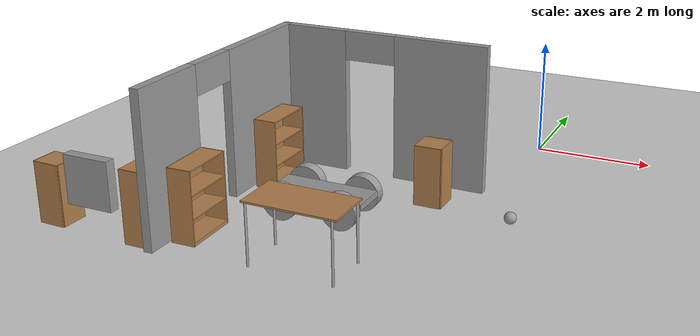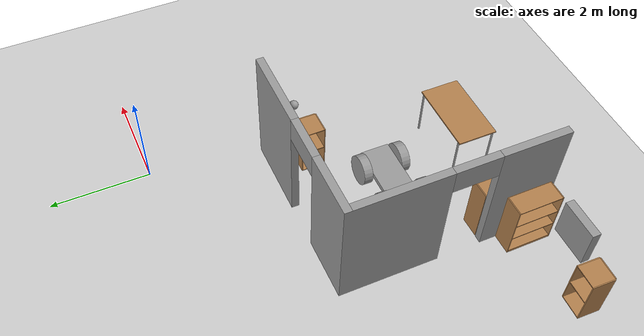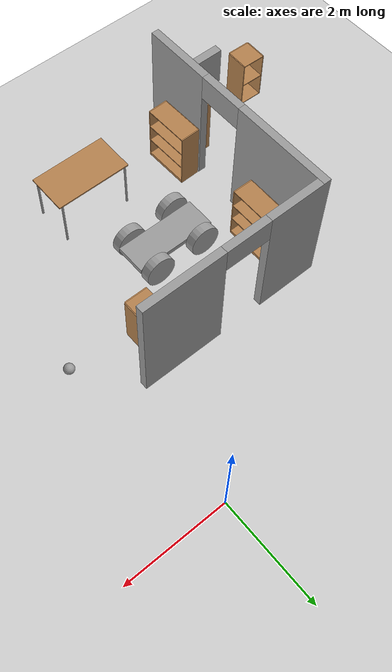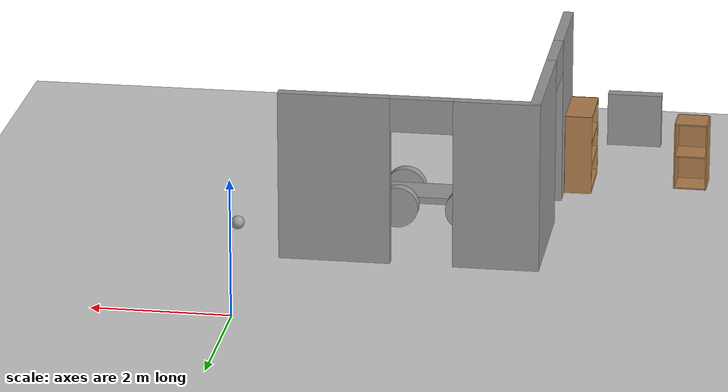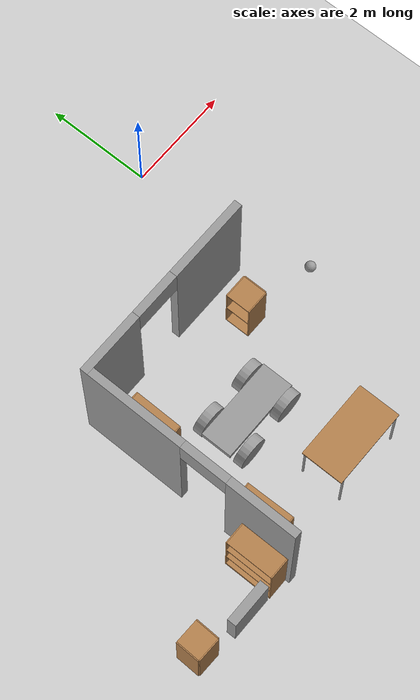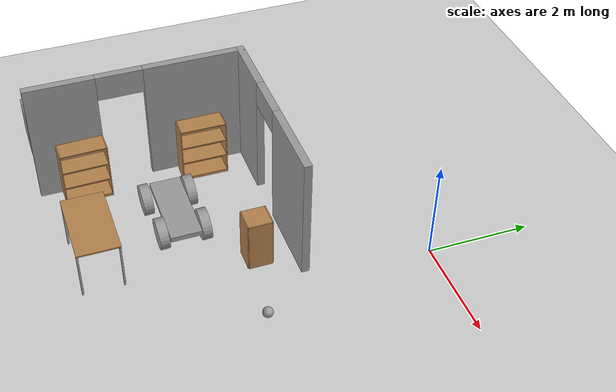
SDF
<sdf version="1.6">
 <world name="default">
  <model name="ground_plane">
   <static>1</static>
   <link name="link">
    <collision name="collision">
     <geometry><plane><normal>0 0 1</normal><size>100 100</size></plane></geometry>
     <surface><friction><ode><mu>100</mu><mu2>50</mu2></ode></friction></surface>
    </collision>
    <visual name="visual">
     <cast_shadows>0</cast_shadows>
     <geometry><plane><normal>0 0 1</normal><size>100 100</size></plane></geometry>
     <material>
      <script><uri>file://media/materials/scripts/gazebo.material</uri><name>Gazebo/Grey</name></script>
     </material>
    </visual>
   </link>
  </model>
  <model name="Building">
   <link name="Wall_10">
    <pose>4.03944 -1.77537 0 0 -0 0</pose>
    <visual name="Wall_10_Visual_0">
     <pose>-1.25521 0 1.25 0 -0 0</pose>
     <geometry><box><size>1.23958 0.15 2.5</size></box></geometry>
     <material>
      <script><uri>file://media/materials/scripts/gazebo.material</uri><name>Gazebo/Grey</name></script>
      <ambient>1 1 1 1</ambient>
      <shader type="pixel"/>
      <diffuse>0.7 0.7 0.7 1</diffuse>
      <specular>0.01 0.01 0.01 1</specular>
      <emissive>0 0 0 1</emissive>
     </material>
     <meta><layer>0</layer></meta>
    </visual>
    <visual name="Wall_10_Visual_1">
     <pose>1.06979 0 1.25 0 -0 0</pose>
     <geometry><box><size>1.61042 0.15 2.5</size></box></geometry>
     <material>
      <script><uri>file://media/materials/scripts/gazebo.material</uri><name>Gazebo/Grey</name></script>
      <ambient>1 1 1 1</ambient>
      <shader type="pixel"/>
      <diffuse>0.7 0.7 0.7 1</diffuse>
      <specular>0.01 0.01 0.01 1</specular>
      <emissive>0 0 0 1</emissive>
     </material>
     <meta><layer>0</layer></meta>
    </visual>
    <visual name="Wall_10_Visual_2">
     <pose>-0.185424 0 2.25 0 -0 0</pose>
     <geometry><box><size>0.9 0.15 0.5</size></box></geometry>
     <material>
      <script><uri>file://media/materials/scripts/gazebo.material</uri><name>Gazebo/Grey</name></script>
      <ambient>1 1 1 1</ambient>
      <shader type="pixel"/>
      <diffuse>0.7 0.7 0.7 1</diffuse>
      <specular>0.01 0.01 0.01 1</specular>
      <emissive>0 0 0 1</emissive>
     </material>
     <meta><layer>0</layer></meta>
    </visual>
    <collision name="Wall_10_Collision_0">
     <pose>-1.25521 0 1.25 0 -0 0</pose>
     <geometry><box><size>1.23958 0.15 2.5</size></box></geometry>
     <surface>
      <friction>
       <ode><mu>1</mu><mu2>1</mu2><fdir1>0 0 0</fdir1><slip1>0</slip1><slip2>0</slip2></ode>
       <torsional>
        <coefficient>1</coefficient>
        <patch_radius>0</patch_radius>
        <surface_radius>0</surface_radius>
        <use_patch_radius>1</use_patch_radius>
        <ode><slip>0</slip></ode>
       </torsional>
      </friction>
      <bounce><restitution_coefficient>0</restitution_coefficient><threshold>1e+06</threshold></bounce>
      <contact>
       <collide_without_contact>0</collide_without_contact>
       <collide_without_contact_bitmask>1</collide_without_contact_bitmask>
       <collide_bitmask>1</collide_bitmask>
       <ode>
        <soft_cfm>0</soft_cfm>
        <soft_erp>0.2</soft_erp>
        <kp>1e+13</kp>
        <kd>1</kd>
        <max_vel>0.01</max_vel>
        <min_depth>0</min_depth>
       </ode>
       <bullet>
        <split_impulse>1</split_impulse>
        <split_impulse_penetration_threshold>-0.01</split_impulse_penetration_threshold>
        <soft_cfm>0</soft_cfm>
        <soft_erp>0.2</soft_erp>
        <kp>1e+13</kp>
        <kd>1</kd>
       </bullet>
      </contact>
     </surface>
    </collision>
    <collision name="Wall_10_Collision_1">
     <pose>1.06979 0 1.25 0 -0 0</pose>
     <geometry><box><size>1.61042 0.15 2.5</size></box></geometry>
     <surface>
      <friction>
       <ode><mu>1</mu><mu2>1</mu2><fdir1>0 0 0</fdir1><slip1>0</slip1><slip2>0</slip2></ode>
       <torsional>
        <coefficient>1</coefficient>
        <patch_radius>0</patch_radius>
        <surface_radius>0</surface_radius>
        <use_patch_radius>1</use_patch_radius>
        <ode><slip>0</slip></ode>
       </torsional>
      </friction>
      <bounce><restitution_coefficient>0</restitution_coefficient><threshold>1e+06</threshold></bounce>
      <contact>
       <collide_without_contact>0</collide_without_contact>
       <collide_without_contact_bitmask>1</collide_without_contact_bitmask>
       <collide_bitmask>1</collide_bitmask>
       <ode>
        <soft_cfm>0</soft_cfm>
        <soft_erp>0.2</soft_erp>
        <kp>1e+13</kp>
        <kd>1</kd>
        <max_vel>0.01</max_vel>
        <min_depth>0</min_depth>
       </ode>
       <bullet>
        <split_impulse>1</split_impulse>
        <split_impulse_penetration_threshold>-0.01</split_impulse_penetration_threshold>
        <soft_cfm>0</soft_cfm>
        <soft_erp>0.2</soft_erp>
        <kp>1e+13</kp>
        <kd>1</kd>
       </bullet>
      </contact>
     </surface>
    </collision>
    <collision name="Wall_10_Collision_2">
     <pose>-0.185424 0 2.25 0 -0 0</pose>
     <geometry><box><size>0.9 0.15 0.5</size></box></geometry>
     <surface>
      <friction>
       <ode><mu>1</mu><mu2>1</mu2><fdir1>0 0 0</fdir1><slip1>0</slip1><slip2>0</slip2></ode>
       <torsional>
        <coefficient>1</coefficient>
        <patch_radius>0</patch_radius>
        <surface_radius>0</surface_radius>
        <use_patch_radius>1</use_patch_radius>
        <ode><slip>0</slip></ode>
       </torsional>
      </friction>
      <bounce><restitution_coefficient>0</restitution_coefficient><threshold>1e+06</threshold></bounce>
      <contact>
       <collide_without_contact>0</collide_without_contact>
       <collide_without_contact_bitmask>1</collide_without_contact_bitmask>
       <collide_bitmask>1</collide_bitmask>
       <ode>
        <soft_cfm>0</soft_cfm>
        <soft_erp>0.2</soft_erp>
        <kp>1e+13</kp>
        <kd>1</kd>
        <max_vel>0.01</max_vel>
        <min_depth>0</min_depth>
       </ode>
       <bullet>
        <split_impulse>1</split_impulse>
        <split_impulse_penetration_threshold>-0.01</split_impulse_penetration_threshold>
        <soft_cfm>0</soft_cfm>
        <soft_erp>0.2</soft_erp>
        <kp>1e+13</kp>
        <kd>1</kd>
       </bullet>
      </contact>
     </surface>
    </collision>
   </link>
   <link name="Wall_9">
    <pose>2.23944 -3.82538 0 0 -0 1.5708</pose>
    <visual name="Wall_9_Visual_0">
     <pose>-1.45094 0 1.25 0 -0 0</pose>
     <geometry><box><size>1.34813 0.15 2.5</size></box></geometry>
     <material>
      <script><uri>file://media/materials/scripts/gazebo.material</uri><name>Gazebo/Grey</name></script>
      <ambient>1 1 1 1</ambient>
      <shader type="pixel"/>
      <diffuse>0.7 0.7 0.7 1</diffuse>
      <specular>0.01 0.01 0.01 1</specular>
      <emissive>0 0 0 1</emissive>
     </material>
     <meta><layer>0</layer></meta>
    </visual>
    <visual name="Wall_9_Visual_1">
     <pose>1.12406 0 1.25 0 -0 0</pose>
     <geometry><box><size>2.00187 0.15 2.5</size></box></geometry>
     <material>
      <script><uri>file://media/materials/scripts/gazebo.material</uri><name>Gazebo/Grey</name></script>
      <ambient>1 1 1 1</ambient>
      <shader type="pixel"/>
      <diffuse>0.7 0.7 0.7 1</diffuse>
      <specular>0.01 0.01 0.01 1</specular>
      <emissive>0 0 0 1</emissive>
     </material>
     <meta><layer>0</layer></meta>
    </visual>
    <visual name="Wall_9_Visual_2">
     <pose>-0.326874 0 2.25 0 -0 0</pose>
     <geometry><box><size>0.9 0.15 0.5</size></box></geometry>
     <material>
      <script><uri>file://media/materials/scripts/gazebo.material</uri><name>Gazebo/Grey</name></script>
      <ambient>1 1 1 1</ambient>
      <shader type="pixel"/>
      <diffuse>0.7 0.7 0.7 1</diffuse>
      <specular>0.01 0.01 0.01 1</specular>
      <emissive>0 0 0 1</emissive>
     </material>
     <meta><layer>0</layer></meta>
    </visual>
    <collision name="Wall_9_Collision_0">
     <pose>-1.45094 0 1.25 0 -0 0</pose>
     <geometry><box><size>1.34813 0.15 2.5</size></box></geometry>
     <surface>
      <friction>
       <ode><mu>1</mu><mu2>1</mu2><fdir1>0 0 0</fdir1><slip1>0</slip1><slip2>0</slip2></ode>
       <torsional>
        <coefficient>1</coefficient>
        <patch_radius>0</patch_radius>
        <surface_radius>0</surface_radius>
        <use_patch_radius>1</use_patch_radius>
        <ode><slip>0</slip></ode>
       </torsional>
      </friction>
      <bounce><restitution_coefficient>0</restitution_coefficient><threshold>1e+06</threshold></bounce>
      <contact>
       <collide_without_contact>0</collide_without_contact>
       <collide_without_contact_bitmask>1</collide_without_contact_bitmask>
       <collide_bitmask>1</collide_bitmask>
       <ode>
        <soft_cfm>0</soft_cfm>
        <soft_erp>0.2</soft_erp>
        <kp>1e+13</kp>
        <kd>1</kd>
        <max_vel>0.01</max_vel>
        <min_depth>0</min_depth>
       </ode>
       <bullet>
        <split_impulse>1</split_impulse>
        <split_impulse_penetration_threshold>-0.01</split_impulse_penetration_threshold>
        <soft_cfm>0</soft_cfm>
        <soft_erp>0.2</soft_erp>
        <kp>1e+13</kp>
        <kd>1</kd>
       </bullet>
      </contact>
     </surface>
    </collision>
    <collision name="Wall_9_Collision_1">
     <pose>1.12406 0 1.25 0 -0 0</pose>
     <geometry><box><size>2.00187 0.15 2.5</size></box></geometry>
     <surface>
      <friction>
       <ode><mu>1</mu><mu2>1</mu2><fdir1>0 0 0</fdir1><slip1>0</slip1><slip2>0</slip2></ode>
       <torsional>
        <coefficient>1</coefficient>
        <patch_radius>0</patch_radius>
        <surface_radius>0</surface_radius>
        <use_patch_radius>1</use_patch_radius>
        <ode><slip>0</slip></ode>
       </torsional>
      </friction>
      <bounce><restitution_coefficient>0</restitution_coefficient><threshold>1e+06</threshold></bounce>
      <contact>
       <collide_without_contact>0</collide_without_contact>
       <collide_without_contact_bitmask>1</collide_without_contact_bitmask>
       <collide_bitmask>1</collide_bitmask>
       <ode>
        <soft_cfm>0</soft_cfm>
        <soft_erp>0.2</soft_erp>
        <kp>1e+13</kp>
        <kd>1</kd>
        <max_vel>0.01</max_vel>
        <min_depth>0</min_depth>
       </ode>
       <bullet>
        <split_impulse>1</split_impulse>
        <split_impulse_penetration_threshold>-0.01</split_impulse_penetration_threshold>
        <soft_cfm>0</soft_cfm>
        <soft_erp>0.2</soft_erp>
        <kp>1e+13</kp>
        <kd>1</kd>
       </bullet>
      </contact>
     </surface>
    </collision>
    <collision name="Wall_9_Collision_2">
     <pose>-0.326874 0 2.25 0 -0 0</pose>
     <geometry><box><size>0.9 0.15 0.5</size></box></geometry>
     <surface>
      <friction>
       <ode><mu>1</mu><mu2>1</mu2><fdir1>0 0 0</fdir1><slip1>0</slip1><slip2>0</slip2></ode>
       <torsional>
        <coefficient>1</coefficient>
        <patch_radius>0</patch_radius>
        <surface_radius>0</surface_radius>
        <use_patch_radius>1</use_patch_radius>
        <ode><slip>0</slip></ode>
       </torsional>
      </friction>
      <bounce><restitution_coefficient>0</restitution_coefficient><threshold>1e+06</threshold></bounce>
      <contact>
       <collide_without_contact>0</collide_without_contact>
       <collide_without_contact_bitmask>1</collide_without_contact_bitmask>
       <collide_bitmask>1</collide_bitmask>
       <ode>
        <soft_cfm>0</soft_cfm>
        <soft_erp>0.2</soft_erp>
        <kp>1e+13</kp>
        <kd>1</kd>
        <max_vel>0.01</max_vel>
        <min_depth>0</min_depth>
       </ode>
       <bullet>
        <split_impulse>1</split_impulse>
        <split_impulse_penetration_threshold>-0.01</split_impulse_penetration_threshold>
        <soft_cfm>0</soft_cfm>
        <soft_erp>0.2</soft_erp>
        <kp>1e+13</kp>
        <kd>1</kd>
       </bullet>
      </contact>
     </surface>
    </collision>
   </link>
   <link name="Window_9">
    <pose>1.21059 -5.84938 0.5 0 -0 0</pose>
    <visual name="Window_9_Visual">
     <pose>0 0 0.4 0 -0 0</pose>
     <geometry><box><size>0.8 0.17 0.8</size></box></geometry>
     <material>
      <script><uri>file://media/materials/scripts/gazebo.material</uri><name>Gazebo/Grey</name></script>
      <shader type="pixel"/>
      <ambient>0.3 0.3 0.3 1</ambient>
      <diffuse>0.7 0.7 0.7 1</diffuse>
      <specular>0.01 0.01 0.01 1</specular>
      <emissive>0 0 0 1</emissive>
     </material>
    </visual>
    <collision name="Window_9_Collision">
     <pose>0 0 0.4 0 -0 0</pose>
     <geometry><box><size>0.8 0.17 0.8</size></box></geometry>
     <surface>
      <friction>
       <ode><mu>1</mu><mu2>1</mu2><fdir1>0 0 0</fdir1><slip1>0</slip1><slip2>0</slip2></ode>
       <torsional>
        <coefficient>1</coefficient>
        <patch_radius>0</patch_radius>
        <surface_radius>0</surface_radius>
        <use_patch_radius>1</use_patch_radius>
        <ode><slip>0</slip></ode>
       </torsional>
      </friction>
      <bounce><restitution_coefficient>0</restitution_coefficient><threshold>1e+06</threshold></bounce>
      <contact>
       <collide_without_contact>0</collide_without_contact>
       <collide_without_contact_bitmask>1</collide_without_contact_bitmask>
       <collide_bitmask>1</collide_bitmask>
       <ode>
        <soft_cfm>0</soft_cfm>
        <soft_erp>0.2</soft_erp>
        <kp>1e+13</kp>
        <kd>1</kd>
        <max_vel>0.01</max_vel>
        <min_depth>0</min_depth>
       </ode>
       <bullet>
        <split_impulse>1</split_impulse>
        <split_impulse_penetration_threshold>-0.01</split_impulse_penetration_threshold>
        <soft_cfm>0</soft_cfm>
        <soft_erp>0.2</soft_erp>
        <kp>1e+13</kp>
        <kd>1</kd>
       </bullet>
      </contact>
     </surface>
    </collision>
   </link>
   <static>1</static>
   <pose>-6.1852 -0.576906 0 0 -0 0</pose>
  </model>
  <model name="cabinet_2">
   <static>1</static>
   <link name="cabinet_bottom_plate">
    <inertial>
     <pose>0 0 -1 0 -0 0</pose>
     <inertia><ixx>2.05</ixx><ixy>0</ixy><ixz>0</ixz><iyy>2.05</iyy><iyz>0</iyz><izz>2.05</izz></inertia>
     <mass>25</mass>
    </inertial>
    <collision name="cabinet_bottom_plate_geom">
     <pose>0 0 0.01 0 -0 0</pose>
     <geometry><box><size>0.45 0.45 0.02</size></box></geometry>
    </collision>
    <visual name="cabinet_bottom_plate_geom_visual">
     <pose>0 0 0.01 0 -0 0</pose>
     <geometry><box><size>0.45 0.45 0.02</size></box></geometry>
     <material>
      <script><uri>file://media/materials/scripts/gazebo.material</uri><name>Gazebo/Wood</name></script>
     </material>
    </visual>
    <collision name="cabinet_bottom_plate_geom_cabinet_back_plate">
     <pose>0.235 0 0.51 0 -0 0</pose>
     <geometry><box><size>0.02 0.45 1.02</size></box></geometry>
    </collision>
    <visual name="cabinet_bottom_plate_geom_cabinet_back_plate_visual">
     <pose>0.235 0 0.51 0 -0 0</pose>
     <geometry><box><size>0.02 0.45 1.02</size></box></geometry>
     <material>
      <script><uri>file://media/materials/scripts/gazebo.material</uri><name>Gazebo/Wood</name></script>
     </material>
    </visual>
    <collision name="cabinet_bottom_plate_geom_cabinet_left_plate">
     <pose>0 0.235 0.51 0 -0 0</pose>
     <geometry><box><size>0.45 0.02 1.02</size></box></geometry>
    </collision>
    <visual name="cabinet_bottom_plate_geom_cabinet_left_plate_visual">
     <pose>0 0.235 0.51 0 -0 0</pose>
     <geometry><box><size>0.45 0.02 1.02</size></box></geometry>
     <material>
      <script><uri>file://media/materials/scripts/gazebo.material</uri><name>Gazebo/Wood</name></script>
     </material>
    </visual>
    <collision name="cabinet_bottom_plate_geom_cabinet_middle_plate">
     <pose>0 0 0.51 0 -0 0</pose>
     <geometry><box><size>0.45 0.45 0.02</size></box></geometry>
    </collision>
    <visual name="cabinet_bottom_plate_geom_cabinet_middle_plate_visual">
     <pose>0 0 0.51 0 -0 0</pose>
     <geometry><box><size>0.45 0.45 0.02</size></box></geometry>
     <material>
      <script><uri>file://media/materials/scripts/gazebo.material</uri><name>Gazebo/Wood</name></script>
     </material>
    </visual>
    <collision name="cabinet_bottom_plate_geom_cabinet_right_plate">
     <pose>0 -0.235 0.51 0 -0 0</pose>
     <geometry><box><size>0.45 0.02 1.02</size></box></geometry>
    </collision>
    <visual name="cabinet_bottom_plate_geom_cabinet_right_plate_visual">
     <pose>0 -0.235 0.51 0 -0 0</pose>
     <geometry><box><size>0.45 0.02 1.02</size></box></geometry>
     <material>
      <script><uri>file://media/materials/scripts/gazebo.material</uri><name>Gazebo/Wood</name></script>
     </material>
    </visual>
    <collision name="cabinet_bottom_plate_geom_cabinet_top_plate">
     <pose>0 0 1.01 0 -0 0</pose>
     <geometry><box><size>0.45 0.45 0.02</size></box></geometry>
    </collision>
    <visual name="cabinet_bottom_plate_geom_cabinet_top_plate_visual">
     <pose>0 0 1.01 0 -0 0</pose>
     <geometry><box><size>0.45 0.45 0.02</size></box></geometry>
     <material>
      <script><uri>file://media/materials/scripts/gazebo.material</uri><name>Gazebo/Wood</name></script>
     </material>
    </visual>
   </link>
   <pose>-0.902573 -3.06685 0 0 -0 0</pose>
  </model>
  <model name="bookshelf_2">
   <static>1</static>
   <link name="link">
    <inertial><mass>1</mass></inertial>
    <collision name="back">
     <pose>0 0.005 0.6 0 -0 0</pose>
     <geometry><box><size>0.9 0.01 1.2</size></box></geometry>
    </collision>
    <visual name="visual1">
     <pose>0 0.005 0.6 0 -0 0</pose>
     <geometry><box><size>0.9 0.01 1.2</size></box></geometry>
     <material>
      <script><uri>file://media/materials/scripts/gazebo.material</uri><name>Gazebo/Wood</name></script>
     </material>
    </visual>
    <collision name="left_side">
     <pose>0.45 -0.195 0.6 0 -0 0</pose>
     <geometry><box><size>0.02 0.4 1.2</size></box></geometry>
    </collision>
    <visual name="visual2">
     <pose>0.45 -0.195 0.6 0 -0 0</pose>
     <geometry><box><size>0.02 0.4 1.2</size></box></geometry>
     <material>
      <script><uri>file://media/materials/scripts/gazebo.material</uri><name>Gazebo/Wood</name></script>
     </material>
    </visual>
    <collision name="right_side">
     <pose>-0.45 -0.195 0.6 0 -0 0</pose>
     <geometry><box><size>0.02 0.4 1.2</size></box></geometry>
    </collision>
    <visual name="visual3">
     <pose>-0.45 -0.195 0.6 0 -0 0</pose>
     <geometry><box><size>0.02 0.4 1.2</size></box></geometry>
     <material>
      <script><uri>file://media/materials/scripts/gazebo.material</uri><name>Gazebo/Wood</name></script>
     </material>
    </visual>
    <collision name="bottom">
     <pose>0 -0.195 0.03 0 -0 0</pose>
     <geometry><box><size>0.88 0.4 0.06</size></box></geometry>
    </collision>
    <visual name="visual4">
     <pose>0 -0.195 0.03 0 -0 0</pose>
     <geometry><box><size>0.88 0.4 0.06</size></box></geometry>
     <material>
      <script><uri>file://media/materials/scripts/gazebo.material</uri><name>Gazebo/Wood</name></script>
     </material>
    </visual>
    <collision name="top">
     <pose>0 -0.195 1.19 0 -0 0</pose>
     <geometry><box><size>0.88 0.4 0.02</size></box></geometry>
    </collision>
    <visual name="visual5">
     <pose>0 -0.195 1.19 0 -0 0</pose>
     <geometry><box><size>0.88 0.4 0.02</size></box></geometry>
     <material>
      <script><uri>file://media/materials/scripts/gazebo.material</uri><name>Gazebo/Wood</name></script>
     </material>
    </visual>
    <collision name="low_shelf">
     <pose>0 -0.195 0.43 0 -0 0</pose>
     <geometry><box><size>0.88 0.4 0.02</size></box></geometry>
    </collision>
    <visual name="visual6">
     <pose>0 -0.195 0.43 0 -0 0</pose>
     <geometry><box><size>0.88 0.4 0.02</size></box></geometry>
     <material>
      <script><uri>file://media/materials/scripts/gazebo.material</uri><name>Gazebo/Wood</name></script>
     </material>
    </visual>
    <collision name="high_shelf">
     <pose>0 -0.195 0.8 0 -0 0</pose>
     <geometry><box><size>0.88 0.4 0.02</size></box></geometry>
    </collision>
    <visual name="visual7">
     <pose>0 -0.195 0.8 0 -0 0</pose>
     <geometry><box><size>0.88 0.4 0.02</size></box></geometry>
     <material>
      <script><uri>file://media/materials/scripts/gazebo.material</uri><name>Gazebo/Wood</name></script>
     </material>
    </visual>
   </link>
   <pose>-3.79986 -3.30251 0 0 -0 1.56417</pose>
  </model>
  <model name="bookshelf_3">
   <static>1</static>
   <link name="link">
    <inertial><mass>1</mass></inertial>
    <collision name="back">
     <pose>0 0.005 0.6 0 -0 0</pose>
     <geometry><box><size>0.9 0.01 1.2</size></box></geometry>
    </collision>
    <visual name="visual1">
     <pose>0 0.005 0.6 0 -0 0</pose>
     <geometry><box><size>0.9 0.01 1.2</size></box></geometry>
     <material>
      <script><uri>file://media/materials/scripts/gazebo.material</uri><name>Gazebo/Wood</name></script>
     </material>
    </visual>
    <collision name="left_side">
     <pose>0.45 -0.195 0.6 0 -0 0</pose>
     <geometry><box><size>0.02 0.4 1.2</size></box></geometry>
    </collision>
    <visual name="visual2">
     <pose>0.45 -0.195 0.6 0 -0 0</pose>
     <geometry><box><size>0.02 0.4 1.2</size></box></geometry>
     <material>
      <script><uri>file://media/materials/scripts/gazebo.material</uri><name>Gazebo/Wood</name></script>
     </material>
    </visual>
    <collision name="right_side">
     <pose>-0.45 -0.195 0.6 0 -0 0</pose>
     <geometry><box><size>0.02 0.4 1.2</size></box></geometry>
    </collision>
    <visual name="visual3">
     <pose>-0.45 -0.195 0.6 0 -0 0</pose>
     <geometry><box><size>0.02 0.4 1.2</size></box></geometry>
     <material>
      <script><uri>file://media/materials/scripts/gazebo.material</uri><name>Gazebo/Wood</name></script>
     </material>
    </visual>
    <collision name="bottom">
     <pose>0 -0.195 0.03 0 -0 0</pose>
     <geometry><box><size>0.88 0.4 0.06</size></box></geometry>
    </collision>
    <visual name="visual4">
     <pose>0 -0.195 0.03 0 -0 0</pose>
     <geometry><box><size>0.88 0.4 0.06</size></box></geometry>
     <material>
      <script><uri>file://media/materials/scripts/gazebo.material</uri><name>Gazebo/Wood</name></script>
     </material>
    </visual>
    <collision name="top">
     <pose>0 -0.195 1.19 0 -0 0</pose>
     <geometry><box><size>0.88 0.4 0.02</size></box></geometry>
    </collision>
    <visual name="visual5">
     <pose>0 -0.195 1.19 0 -0 0</pose>
     <geometry><box><size>0.88 0.4 0.02</size></box></geometry>
     <material>
      <script><uri>file://media/materials/scripts/gazebo.material</uri><name>Gazebo/Wood</name></script>
     </material>
    </visual>
    <collision name="low_shelf">
     <pose>0 -0.195 0.43 0 -0 0</pose>
     <geometry><box><size>0.88 0.4 0.02</size></box></geometry>
    </collision>
    <visual name="visual6">
     <pose>0 -0.195 0.43 0 -0 0</pose>
     <geometry><box><size>0.88 0.4 0.02</size></box></geometry>
     <material>
      <script><uri>file://media/materials/scripts/gazebo.material</uri><name>Gazebo/Wood</name></script>
     </material>
    </visual>
    <collision name="high_shelf">
     <pose>0 -0.195 0.8 0 -0 0</pose>
     <geometry><box><size>0.88 0.4 0.02</size></box></geometry>
    </collision>
    <visual name="visual7">
     <pose>0 -0.195 0.8 0 -0 0</pose>
     <geometry><box><size>0.88 0.4 0.02</size></box></geometry>
     <material>
      <script><uri>file://media/materials/scripts/gazebo.material</uri><name>Gazebo/Wood</name></script>
     </material>
    </visual>
   </link>
   <pose>-3.83412 -5.64562 0 0 -0 1.59091</pose>
  </model>
  <model name="table_2">
   <static>1</static>
   <link name="link">
    <collision name="surface">
     <pose>0 0 1 0 -0 0</pose>
     <geometry><box><size>1.5 0.8 0.03</size></box></geometry>
     <surface><friction><ode><mu>0.6</mu><mu2>0.6</mu2></ode></friction></surface>
    </collision>
    <visual name="visual1">
     <pose>0 0 1 0 -0 0</pose>
     <geometry><box><size>1.5 0.8 0.03</size></box></geometry>
     <material>
      <script><uri>file://media/materials/scripts/gazebo.material</uri><name>Gazebo/Wood</name></script>
     </material>
    </visual>
    <collision name="front_left_leg">
     <pose>0.68 0.38 0.5 0 -0 0</pose>
     <geometry><cylinder><radius>0.02</radius><length>1</length></cylinder></geometry>
    </collision>
    <visual name="front_left_leg">
     <pose>0.68 0.38 0.5 0 -0 0</pose>
     <geometry><cylinder><radius>0.02</radius><length>1</length></cylinder></geometry>
     <material>
      <script><uri>file://media/materials/scripts/gazebo.material</uri><name>Gazebo/Grey</name></script>
     </material>
    </visual>
    <collision name="front_right_leg">
     <pose>0.68 -0.38 0.5 0 -0 0</pose>
     <geometry><cylinder><radius>0.02</radius><length>1</length></cylinder></geometry>
    </collision>
    <visual name="front_right_leg">
     <pose>0.68 -0.38 0.5 0 -0 0</pose>
     <geometry><cylinder><radius>0.02</radius><length>1</length></cylinder></geometry>
     <material>
      <script><uri>file://media/materials/scripts/gazebo.material</uri><name>Gazebo/Grey</name></script>
     </material>
    </visual>
    <collision name="back_right_leg">
     <pose>-0.68 -0.38 0.5 0 -0 0</pose>
     <geometry><cylinder><radius>0.02</radius><length>1</length></cylinder></geometry>
    </collision>
    <visual name="back_right_leg">
     <pose>-0.68 -0.38 0.5 0 -0 0</pose>
     <geometry><cylinder><radius>0.02</radius><length>1</length></cylinder></geometry>
     <material>
      <script><uri>file://media/materials/scripts/gazebo.material</uri><name>Gazebo/Grey</name></script>
     </material>
    </visual>
    <collision name="back_left_leg">
     <pose>-0.68 0.38 0.5 0 -0 0</pose>
     <geometry><cylinder><radius>0.02</radius><length>1</length></cylinder></geometry>
    </collision>
    <visual name="back_left_leg">
     <pose>-0.68 0.38 0.5 0 -0 0</pose>
     <geometry><cylinder><radius>0.02</radius><length>1</length></cylinder></geometry>
     <material>
      <script><uri>file://media/materials/scripts/gazebo.material</uri><name>Gazebo/Grey</name></script>
     </material>
    </visual>
   </link>
   <pose>-1.71792 -5.8906 0 0 -0 0</pose>
  </model>
  <model name="cabinet_3">
   <static>1</static>
   <link name="cabinet_bottom_plate">
    <inertial>
     <pose>0 0 -1 0 -0 0</pose>
     <inertia><ixx>2.05</ixx><ixy>0</ixy><ixz>0</ixz><iyy>2.05</iyy><iyz>0</iyz><izz>2.05</izz></inertia>
     <mass>25</mass>
    </inertial>
    <collision name="cabinet_bottom_plate_geom">
     <pose>0 0 0.01 0 -0 0</pose>
     <geometry><box><size>0.45 0.45 0.02</size></box></geometry>
    </collision>
    <visual name="cabinet_bottom_plate_geom_visual">
     <pose>0 0 0.01 0 -0 0</pose>
     <geometry><box><size>0.45 0.45 0.02</size></box></geometry>
     <material>
      <script><uri>file://media/materials/scripts/gazebo.material</uri><name>Gazebo/Wood</name></script>
     </material>
    </visual>
    <collision name="cabinet_bottom_plate_geom_cabinet_back_plate">
     <pose>0.235 0 0.51 0 -0 0</pose>
     <geometry><box><size>0.02 0.45 1.02</size></box></geometry>
    </collision>
    <visual name="cabinet_bottom_plate_geom_cabinet_back_plate_visual">
     <pose>0.235 0 0.51 0 -0 0</pose>
     <geometry><box><size>0.02 0.45 1.02</size></box></geometry>
     <material>
      <script><uri>file://media/materials/scripts/gazebo.material</uri><name>Gazebo/Wood</name></script>
     </material>
    </visual>
    <collision name="cabinet_bottom_plate_geom_cabinet_left_plate">
     <pose>0 0.235 0.51 0 -0 0</pose>
     <geometry><box><size>0.45 0.02 1.02</size></box></geometry>
    </collision>
    <visual name="cabinet_bottom_plate_geom_cabinet_left_plate_visual">
     <pose>0 0.235 0.51 0 -0 0</pose>
     <geometry><box><size>0.45 0.02 1.02</size></box></geometry>
     <material>
      <script><uri>file://media/materials/scripts/gazebo.material</uri><name>Gazebo/Wood</name></script>
     </material>
    </visual>
    <collision name="cabinet_bottom_plate_geom_cabinet_middle_plate">
     <pose>0 0 0.51 0 -0 0</pose>
     <geometry><box><size>0.45 0.45 0.02</size></box></geometry>
    </collision>
    <visual name="cabinet_bottom_plate_geom_cabinet_middle_plate_visual">
     <pose>0 0 0.51 0 -0 0</pose>
     <geometry><box><size>0.45 0.45 0.02</size></box></geometry>
     <material>
      <script><uri>file://media/materials/scripts/gazebo.material</uri><name>Gazebo/Wood</name></script>
     </material>
    </visual>
    <collision name="cabinet_bottom_plate_geom_cabinet_right_plate">
     <pose>0 -0.235 0.51 0 -0 0</pose>
     <geometry><box><size>0.45 0.02 1.02</size></box></geometry>
    </collision>
    <visual name="cabinet_bottom_plate_geom_cabinet_right_plate_visual">
     <pose>0 -0.235 0.51 0 -0 0</pose>
     <geometry><box><size>0.45 0.02 1.02</size></box></geometry>
     <material>
      <script><uri>file://media/materials/scripts/gazebo.material</uri><name>Gazebo/Wood</name></script>
     </material>
    </visual>
    <collision name="cabinet_bottom_plate_geom_cabinet_top_plate">
     <pose>0 0 1.01 0 -0 0</pose>
     <geometry><box><size>0.45 0.45 0.02</size></box></geometry>
    </collision>
    <visual name="cabinet_bottom_plate_geom_cabinet_top_plate_visual">
     <pose>0 0 1.01 0 -0 0</pose>
     <geometry><box><size>0.45 0.45 0.02</size></box></geometry>
     <material>
      <script><uri>file://media/materials/scripts/gazebo.material</uri><name>Gazebo/Wood</name></script>
     </material>
    </visual>
   </link>
   <pose>-5.86214 -6.15291 0 0 0 -1.59557</pose>
  </model>
  <model name="bookshelf_6">
   <static>1</static>
   <link name="link">
    <inertial><mass>1</mass></inertial>
    <collision name="back">
     <pose>0 0.005 0.6 0 -0 0</pose>
     <geometry><box><size>0.9 0.01 1.2</size></box></geometry>
    </collision>
    <visual name="visual1">
     <pose>0 0.005 0.6 0 -0 0</pose>
     <geometry><box><size>0.9 0.01 1.2</size></box></geometry>
     <material>
      <script><uri>file://media/materials/scripts/gazebo.material</uri><name>Gazebo/Wood</name></script>
     </material>
    </visual>
    <collision name="left_side">
     <pose>0.45 -0.195 0.6 0 -0 0</pose>
     <geometry><box><size>0.02 0.4 1.2</size></box></geometry>
    </collision>
    <visual name="visual2">
     <pose>0.45 -0.195 0.6 0 -0 0</pose>
     <geometry><box><size>0.02 0.4 1.2</size></box></geometry>
     <material>
      <script><uri>file://media/materials/scripts/gazebo.material</uri><name>Gazebo/Wood</name></script>
     </material>
    </visual>
    <collision name="right_side">
     <pose>-0.45 -0.195 0.6 0 -0 0</pose>
     <geometry><box><size>0.02 0.4 1.2</size></box></geometry>
    </collision>
    <visual name="visual3">
     <pose>-0.45 -0.195 0.6 0 -0 0</pose>
     <geometry><box><size>0.02 0.4 1.2</size></box></geometry>
     <material>
      <script><uri>file://media/materials/scripts/gazebo.material</uri><name>Gazebo/Wood</name></script>
     </material>
    </visual>
    <collision name="bottom">
     <pose>0 -0.195 0.03 0 -0 0</pose>
     <geometry><box><size>0.88 0.4 0.06</size></box></geometry>
    </collision>
    <visual name="visual4">
     <pose>0 -0.195 0.03 0 -0 0</pose>
     <geometry><box><size>0.88 0.4 0.06</size></box></geometry>
     <material>
      <script><uri>file://media/materials/scripts/gazebo.material</uri><name>Gazebo/Wood</name></script>
     </material>
    </visual>
    <collision name="top">
     <pose>0 -0.195 1.19 0 -0 0</pose>
     <geometry><box><size>0.88 0.4 0.02</size></box></geometry>
    </collision>
    <visual name="visual5">
     <pose>0 -0.195 1.19 0 -0 0</pose>
     <geometry><box><size>0.88 0.4 0.02</size></box></geometry>
     <material>
      <script><uri>file://media/materials/scripts/gazebo.material</uri><name>Gazebo/Wood</name></script>
     </material>
    </visual>
    <collision name="low_shelf">
     <pose>0 -0.195 0.43 0 -0 0</pose>
     <geometry><box><size>0.88 0.4 0.02</size></box></geometry>
    </collision>
    <visual name="visual6">
     <pose>0 -0.195 0.43 0 -0 0</pose>
     <geometry><box><size>0.88 0.4 0.02</size></box></geometry>
     <material>
      <script><uri>file://media/materials/scripts/gazebo.material</uri><name>Gazebo/Wood</name></script>
     </material>
    </visual>
    <collision name="high_shelf">
     <pose>0 -0.195 0.8 0 -0 0</pose>
     <geometry><box><size>0.88 0.4 0.02</size></box></geometry>
    </collision>
    <visual name="visual7">
     <pose>0 -0.195 0.8 0 -0 0</pose>
     <geometry><box><size>0.88 0.4 0.02</size></box></geometry>
     <material>
      <script><uri>file://media/materials/scripts/gazebo.material</uri><name>Gazebo/Wood</name></script>
     </material>
    </visual>
   </link>
   <pose>-4.02795 -5.9877 0 0 0 -1.56734</pose>
  </model>
  <model name="WheelRobot_clone">
   <link name="link_0">
    <pose>-0 0.009991 0.05001 0 -0 0</pose>
    <inertial>
     <mass>1</mass>
     <inertia>
      <ixx>0.166667</ixx>
      <ixy>0</ixy>
      <ixz>0</ixz>
      <iyy>0.166667</iyy>
      <iyz>0</iyz>
      <izz>0.166667</izz>
     </inertia>
    </inertial>
    <visual name="visual">
     <geometry><box><size>1.6 0.6 0.1</size></box></geometry>
     <material>
      <lighting>1</lighting>
      <script><uri>file://media/materials/scripts/gazebo.material</uri><name>Gazebo/Grey</name></script>
      <shader type="pixel"><normal_map>__default__</normal_map></shader>
      <ambient>0.3 0.3 0.3 1</ambient>
      <diffuse>0.7 0.7 0.7 1</diffuse>
      <specular>0.01 0.01 0.01 1</specular>
      <emissive>0 0 0 1</emissive>
     </material>
    </visual>
    <collision name="collision">
     <geometry><box><size>1.6 0.6 0.1</size></box></geometry>
     <surface>
      <friction>
       <ode><mu>1</mu><mu2>1</mu2><fdir1>0 0 0</fdir1><slip1>0</slip1><slip2>0</slip2></ode>
       <torsional>
        <coefficient>1</coefficient>
        <patch_radius>0</patch_radius>
        <surface_radius>0</surface_radius>
        <use_patch_radius>1</use_patch_radius>
        <ode><slip>0</slip></ode>
       </torsional>
      </friction>
      <bounce><restitution_coefficient>0</restitution_coefficient><threshold>1e+06</threshold></bounce>
      <contact>
       <collide_without_contact>0</collide_without_contact>
       <collide_without_contact_bitmask>1</collide_without_contact_bitmask>
       <collide_bitmask>1</collide_bitmask>
       <ode>
        <soft_cfm>0</soft_cfm>
        <soft_erp>0.2</soft_erp>
        <kp>1e+13</kp>
        <kd>1</kd>
        <max_vel>0.01</max_vel>
        <min_depth>0</min_depth>
       </ode>
       <bullet>
        <split_impulse>1</split_impulse>
        <split_impulse_penetration_threshold>-0.01</split_impulse_penetration_threshold>
        <soft_cfm>0</soft_cfm>
        <soft_erp>0.2</soft_erp>
        <kp>1e+13</kp>
        <kd>1</kd>
       </bullet>
      </contact>
     </surface>
    </collision>
   </link>
   <link name="link_1">
    <pose>-0.5 -0.442498 -0.012502 -1.52875 0 0</pose>
    <inertial>
     <mass>1</mass>
     <inertia><ixx>0.145833</ixx><ixy>0</ixy><ixz>0</ixz><iyy>0.145833</iyy><iyz>0</iyz><izz>0.125</izz></inertia>
    </inertial>
    <visual name="visual">
     <geometry><cylinder><radius>0.3</radius><length>0.18</length></cylinder></geometry>
     <material>
      <lighting>1</lighting>
      <script><uri>file://media/materials/scripts/gazebo.material</uri><name>Gazebo/Grey</name></script>
      <shader type="pixel"><normal_map>__default__</normal_map></shader>
      <ambient>0.3 0.3 0.3 1</ambient>
      <diffuse>0.7 0.7 0.7 1</diffuse>
      <specular>0.01 0.01 0.01 1</specular>
      <emissive>0 0 0 1</emissive>
     </material>
    </visual>
    <collision name="collision">
     <geometry><cylinder><radius>0.3</radius><length>0.18</length></cylinder></geometry>
     <surface>
      <friction>
       <ode><mu>1</mu><mu2>1</mu2><fdir1>0 0 0</fdir1><slip1>0</slip1><slip2>0</slip2></ode>
       <torsional>
        <coefficient>1</coefficient>
        <patch_radius>0</patch_radius>
        <surface_radius>0</surface_radius>
        <use_patch_radius>1</use_patch_radius>
        <ode><slip>0</slip></ode>
       </torsional>
      </friction>
      <bounce><restitution_coefficient>0</restitution_coefficient><threshold>1e+06</threshold></bounce>
      <contact>
       <collide_without_contact>0</collide_without_contact>
       <collide_without_contact_bitmask>1</collide_without_contact_bitmask>
       <collide_bitmask>1</collide_bitmask>
       <ode>
        <soft_cfm>0</soft_cfm>
        <soft_erp>0.2</soft_erp>
        <kp>1e+13</kp>
        <kd>1</kd>
        <max_vel>0.01</max_vel>
        <min_depth>0</min_depth>
       </ode>
       <bullet>
        <split_impulse>1</split_impulse>
        <split_impulse_penetration_threshold>-0.01</split_impulse_penetration_threshold>
        <soft_cfm>0</soft_cfm>
        <soft_erp>0.2</soft_erp>
        <kp>1e+13</kp>
        <kd>1</kd>
       </bullet>
      </contact>
     </surface>
    </collision>
   </link>
   <link name="link_1_clone">
    <pose>-0.5 0.412522 -0.012502 -1.52875 0 0</pose>
    <inertial>
     <mass>1</mass>
     <inertia><ixx>0.145833</ixx><ixy>0</ixy><ixz>0</ixz><iyy>0.145833</iyy><iyz>0</iyz><izz>0.125</izz></inertia>
    </inertial>
    <visual name="visual">
     <geometry><cylinder><radius>0.3</radius><length>0.18</length></cylinder></geometry>
     <material>
      <lighting>1</lighting>
      <script><uri>file://media/materials/scripts/gazebo.material</uri><name>Gazebo/Grey</name></script>
      <shader type="pixel"><normal_map>__default__</normal_map></shader>
      <ambient>0.3 0.3 0.3 1</ambient>
      <diffuse>0.7 0.7 0.7 1</diffuse>
      <specular>0.01 0.01 0.01 1</specular>
      <emissive>0 0 0 1</emissive>
     </material>
    </visual>
    <collision name="collision">
     <geometry><cylinder><radius>0.3</radius><length>0.18</length></cylinder></geometry>
     <surface>
      <friction>
       <ode><mu>1</mu><mu2>1</mu2><fdir1>0 0 0</fdir1><slip1>0</slip1><slip2>0</slip2></ode>
       <torsional>
        <coefficient>1</coefficient>
        <patch_radius>0</patch_radius>
        <surface_radius>0</surface_radius>
        <use_patch_radius>1</use_patch_radius>
        <ode><slip>0</slip></ode>
       </torsional>
      </friction>
      <bounce><restitution_coefficient>0</restitution_coefficient><threshold>1e+06</threshold></bounce>
      <contact>
       <collide_without_contact>0</collide_without_contact>
       <collide_without_contact_bitmask>1</collide_without_contact_bitmask>
       <collide_bitmask>1</collide_bitmask>
       <ode>
        <soft_cfm>0</soft_cfm>
        <soft_erp>0.2</soft_erp>
        <kp>1e+13</kp>
        <kd>1</kd>
        <max_vel>0.01</max_vel>
        <min_depth>0</min_depth>
       </ode>
       <bullet>
        <split_impulse>1</split_impulse>
        <split_impulse_penetration_threshold>-0.01</split_impulse_penetration_threshold>
        <soft_cfm>0</soft_cfm>
        <soft_erp>0.2</soft_erp>
        <kp>1e+13</kp>
        <kd>1</kd>
       </bullet>
      </contact>
     </surface>
    </collision>
   </link>
   <link name="link_1_clone_0">
    <pose>0.5 -0.392539 -0.012502 -1.52875 0 0</pose>
    <inertial>
     <mass>1</mass>
     <inertia><ixx>0.145833</ixx><ixy>0</ixy><ixz>0</ixz><iyy>0.145833</iyy><iyz>0</iyz><izz>0.125</izz></inertia>
    </inertial>
    <visual name="visual">
     <geometry><cylinder><radius>0.3</radius><length>0.18</length></cylinder></geometry>
     <material>
      <lighting>1</lighting>
      <script><uri>file://media/materials/scripts/gazebo.material</uri><name>Gazebo/Grey</name></script>
      <shader type="pixel"><normal_map>__default__</normal_map></shader>
      <ambient>0.3 0.3 0.3 1</ambient>
      <diffuse>0.7 0.7 0.7 1</diffuse>
      <specular>0.01 0.01 0.01 1</specular>
      <emissive>0 0 0 1</emissive>
     </material>
    </visual>
    <collision name="collision">
     <geometry><cylinder><radius>0.3</radius><length>0.18</length></cylinder></geometry>
     <surface>
      <friction>
       <ode><mu>1</mu><mu2>1</mu2><fdir1>0 0 0</fdir1><slip1>0</slip1><slip2>0</slip2></ode>
       <torsional>
        <coefficient>1</coefficient>
        <patch_radius>0</patch_radius>
        <surface_radius>0</surface_radius>
        <use_patch_radius>1</use_patch_radius>
        <ode><slip>0</slip></ode>
       </torsional>
      </friction>
      <bounce><restitution_coefficient>0</restitution_coefficient><threshold>1e+06</threshold></bounce>
      <contact>
       <collide_without_contact>0</collide_without_contact>
       <collide_without_contact_bitmask>1</collide_without_contact_bitmask>
       <collide_bitmask>1</collide_bitmask>
       <ode>
        <soft_cfm>0</soft_cfm>
        <soft_erp>0.2</soft_erp>
        <kp>1e+13</kp>
        <kd>1</kd>
        <max_vel>0.01</max_vel>
        <min_depth>0</min_depth>
       </ode>
       <bullet>
        <split_impulse>1</split_impulse>
        <split_impulse_penetration_threshold>-0.01</split_impulse_penetration_threshold>
        <soft_cfm>0</soft_cfm>
        <soft_erp>0.2</soft_erp>
        <kp>1e+13</kp>
        <kd>1</kd>
       </bullet>
      </contact>
     </surface>
    </collision>
   </link>
   <link name="link_1_clone_1">
    <pose>0.5 0.412522 -0.012502 -1.52875 0 0</pose>
    <inertial>
     <mass>1</mass>
     <inertia><ixx>0.145833</ixx><ixy>0</ixy><ixz>0</ixz><iyy>0.145833</iyy><iyz>0</iyz><izz>0.125</izz></inertia>
    </inertial>
    <visual name="visual">
     <geometry><cylinder><radius>0.3</radius><length>0.18</length></cylinder></geometry>
     <material>
      <lighting>1</lighting>
      <script><uri>file://media/materials/scripts/gazebo.material</uri><name>Gazebo/Grey</name></script>
      <shader type="pixel"><normal_map>__default__</normal_map></shader>
      <ambient>0.3 0.3 0.3 1</ambient>
      <diffuse>0.7 0.7 0.7 1</diffuse>
      <specular>0.01 0.01 0.01 1</specular>
      <emissive>0 0 0 1</emissive>
     </material>
    </visual>
    <collision name="collision">
     <geometry><cylinder><radius>0.3</radius><length>0.18</length></cylinder></geometry>
     <surface>
      <friction>
       <ode><mu>1</mu><mu2>1</mu2><fdir1>0 0 0</fdir1><slip1>0</slip1><slip2>0</slip2></ode>
       <torsional>
        <coefficient>1</coefficient>
        <patch_radius>0</patch_radius>
        <surface_radius>0</surface_radius>
        <use_patch_radius>1</use_patch_radius>
        <ode><slip>0</slip></ode>
       </torsional>
      </friction>
      <bounce><restitution_coefficient>0</restitution_coefficient><threshold>1e+06</threshold></bounce>
      <contact>
       <collide_without_contact>0</collide_without_contact>
       <collide_without_contact_bitmask>1</collide_without_contact_bitmask>
       <collide_bitmask>1</collide_bitmask>
       <ode>
        <soft_cfm>0</soft_cfm>
        <soft_erp>0.2</soft_erp>
        <kp>1e+13</kp>
        <kd>1</kd>
        <max_vel>0.01</max_vel>
        <min_depth>0</min_depth>
       </ode>
       <bullet>
        <split_impulse>1</split_impulse>
        <split_impulse_penetration_threshold>-0.01</split_impulse_penetration_threshold>
        <soft_cfm>0</soft_cfm>
        <soft_erp>0.2</soft_erp>
        <kp>1e+13</kp>
        <kd>1</kd>
       </bullet>
      </contact>
     </surface>
    </collision>
   </link>
   <joint name="link_0_JOINT_0" type="revolute">
    <parent>link_0</parent>
    <child>link_1</child>
    <axis>
     <xyz>0 0 1</xyz>
     <use_parent_model_frame>0</use_parent_model_frame>
     <limit>
      <lower>-1.79769e+308</lower>
      <upper>1.79769e+308</upper>
      <effort>-1</effort>
      <velocity>-1</velocity>
     </limit>
     <dynamics>
      <spring_reference>0</spring_reference>
      <spring_stiffness>0</spring_stiffness>
      <damping>0</damping>
     </dynamics>
    </axis>
    <physics>
     <ode><limit><cfm>0</cfm><erp>0.2</erp></limit><suspension><cfm>0</cfm><erp>0.2</erp></suspension></ode>
    </physics>
   </joint>
   <joint name="link_0_JOINT_1" type="revolute">
    <parent>link_0</parent>
    <child>link_1_clone</child>
    <axis>
     <xyz>0 0 1</xyz>
     <use_parent_model_frame>0</use_parent_model_frame>
     <limit>
      <lower>-1.79769e+308</lower>
      <upper>1.79769e+308</upper>
      <effort>-1</effort>
      <velocity>-1</velocity>
     </limit>
     <dynamics>
      <spring_reference>0</spring_reference>
      <spring_stiffness>0</spring_stiffness>
      <damping>0</damping>
     </dynamics>
    </axis>
    <physics>
     <ode><limit><cfm>0</cfm><erp>0.2</erp></limit><suspension><cfm>0</cfm><erp>0.2</erp></suspension></ode>
    </physics>
   </joint>
   <joint name="link_0_JOINT_2" type="revolute">
    <parent>link_0</parent>
    <child>link_1_clone_1</child>
    <axis>
     <xyz>0 0 1</xyz>
     <use_parent_model_frame>0</use_parent_model_frame>
     <limit>
      <lower>-1.79769e+308</lower>
      <upper>1.79769e+308</upper>
      <effort>-1</effort>
      <velocity>-1</velocity>
     </limit>
     <dynamics>
      <spring_reference>0</spring_reference>
      <spring_stiffness>0</spring_stiffness>
      <damping>0</damping>
     </dynamics>
    </axis>
    <physics>
     <ode><limit><cfm>0</cfm><erp>0.2</erp></limit><suspension><cfm>0</cfm><erp>0.2</erp></suspension></ode>
    </physics>
   </joint>
   <joint name="link_0_JOINT_3" type="revolute">
    <parent>link_0</parent>
    <child>link_1_clone_0</child>
    <axis>
     <xyz>0 0 1</xyz>
     <use_parent_model_frame>0</use_parent_model_frame>
     <limit>
      <lower>-1.79769e+308</lower>
      <upper>1.79769e+308</upper>
      <effort>-1</effort>
      <velocity>-1</velocity>
     </limit>
     <dynamics>
      <spring_reference>0</spring_reference>
      <spring_stiffness>0</spring_stiffness>
      <damping>0</damping>
     </dynamics>
    </axis>
    <physics>
     <ode><limit><cfm>0</cfm><erp>0.2</erp></limit><suspension><cfm>0</cfm><erp>0.2</erp></suspension></ode>
    </physics>
   </joint>
   <static>0</static>
   <pose>-2.27781 -4.23157 0.31602 0 -0 0.000338</pose>
  </model>
  <model name="my_ball">
   <link name="link_0">
    <inertial>
     <mass>1</mass>
     <inertia><ixx>0.1</ixx><ixy>0</ixy><ixz>0</ixz><iyy>0.1</iyy><iyz>0</iyz><izz>0.1</izz></inertia>
    </inertial>
    <visual name="visual">
     <geometry><sphere><radius>0.1</radius></sphere></geometry>
     <material>
      <lighting>1</lighting>
      <script><uri>file://media/materials/scripts/gazebo.material</uri><name>Gazebo/Grey</name></script>
      <shader type="pixel"><normal_map>__default__</normal_map></shader>
      <ambient>1 1 1 1</ambient>
      <diffuse>1 1 1 1</diffuse>
      <specular>1 1 1 1</specular>
      <emissive>0 0 0 1</emissive>
     </material>
    </visual>
    <collision name="collision">
     <geometry><sphere><radius>0.1</radius></sphere></geometry>
     <surface>
      <friction>
       <ode><mu>1</mu><mu2>1</mu2><fdir1>0 0 0</fdir1><slip1>0</slip1><slip2>0</slip2></ode>
       <torsional>
        <coefficient>1</coefficient>
        <patch_radius>0</patch_radius>
        <surface_radius>0</surface_radius>
        <use_patch_radius>1</use_patch_radius>
        <ode><slip>0</slip></ode>
       </torsional>
      </friction>
      <bounce><restitution_coefficient>0</restitution_coefficient><threshold>1e+06</threshold></bounce>
      <contact>
       <collide_without_contact>0</collide_without_contact>
       <collide_without_contact_bitmask>1</collide_without_contact_bitmask>
       <collide_bitmask>1</collide_bitmask>
       <ode>
        <soft_cfm>0</soft_cfm>
        <soft_erp>0.2</soft_erp>
        <kp>1e+13</kp>
        <kd>1</kd>
        <max_vel>0.01</max_vel>
        <min_depth>0</min_depth>
       </ode>
       <bullet>
        <split_impulse>1</split_impulse>
        <split_impulse_penetration_threshold>-0.01</split_impulse_penetration_threshold>
        <soft_cfm>0</soft_cfm>
        <soft_erp>0.2</soft_erp>
        <kp>1e+13</kp>
        <kd>1</kd>
       </bullet>
      </contact>
     </surface>
    </collision>
   </link>
   <static>0</static>
   <pose>0.514027 -3.33928 0.1 0 -0 0</pose>
  </model>
 </world>
</sdf>
